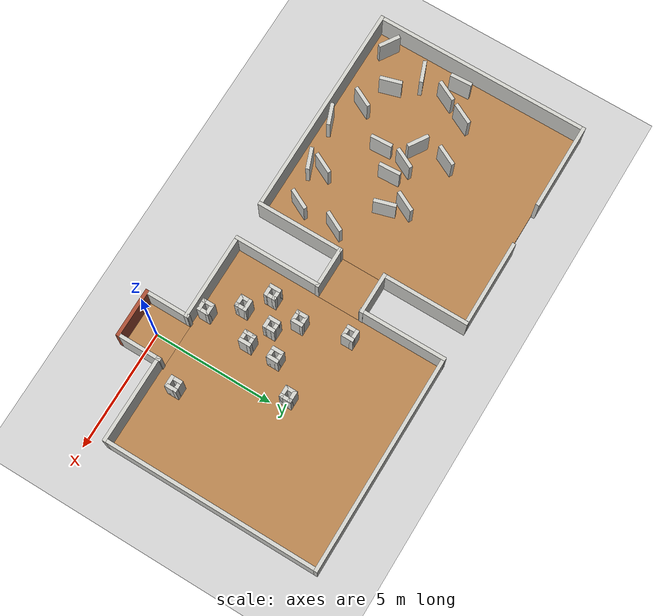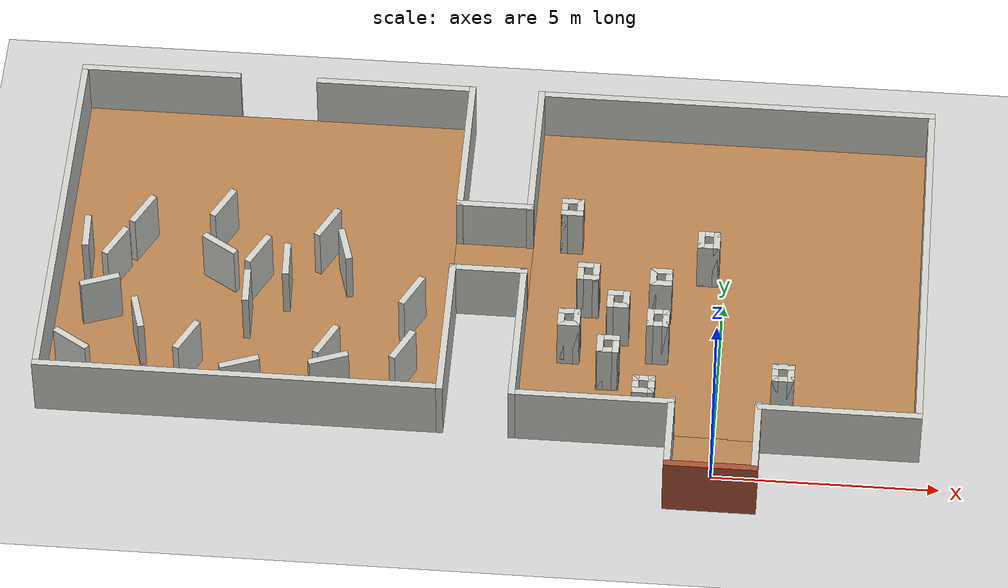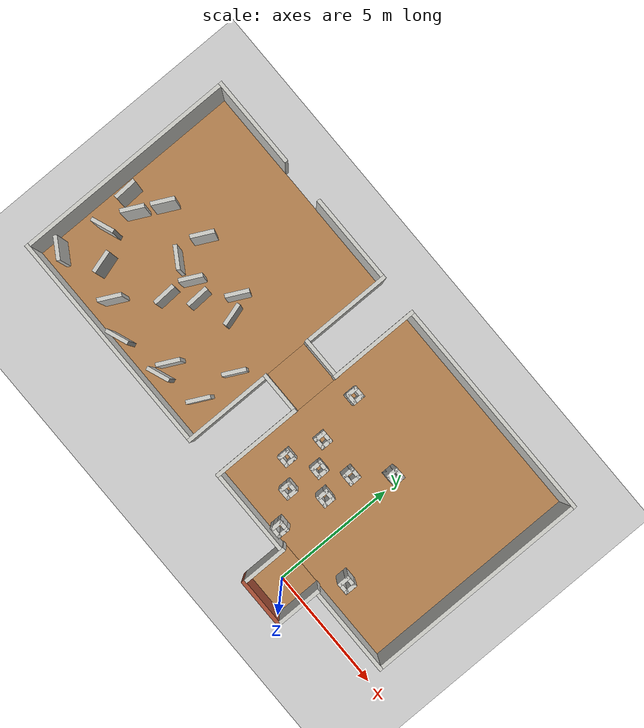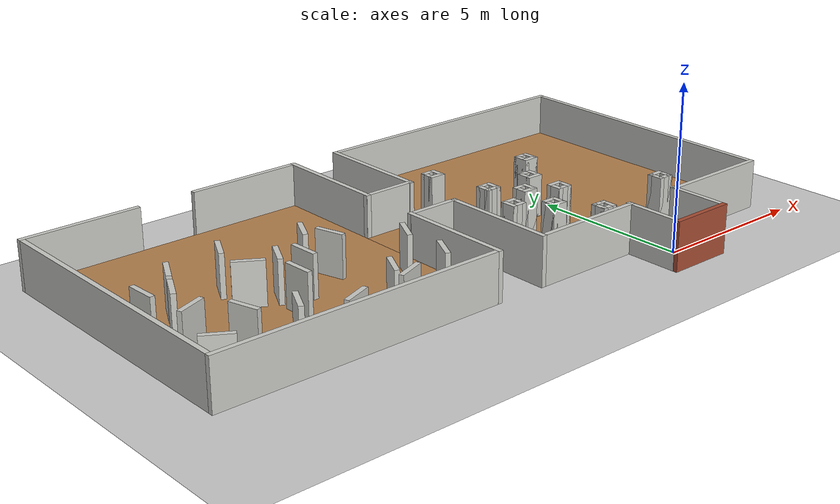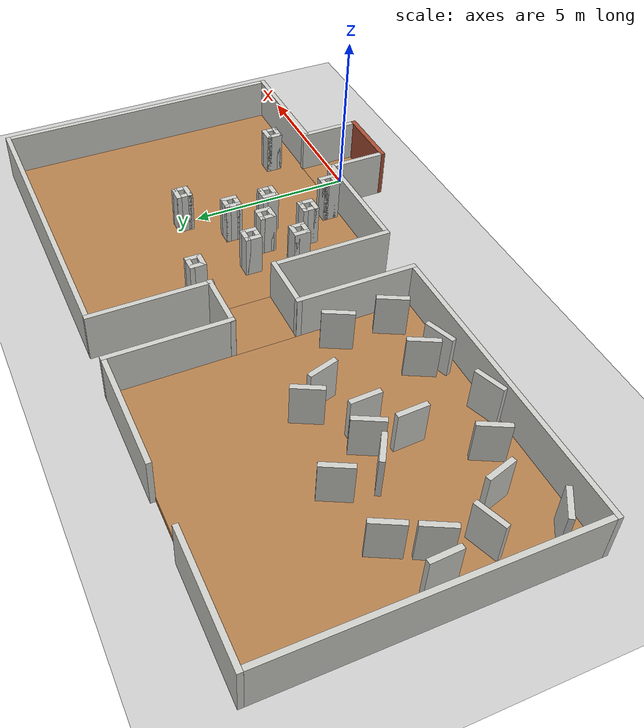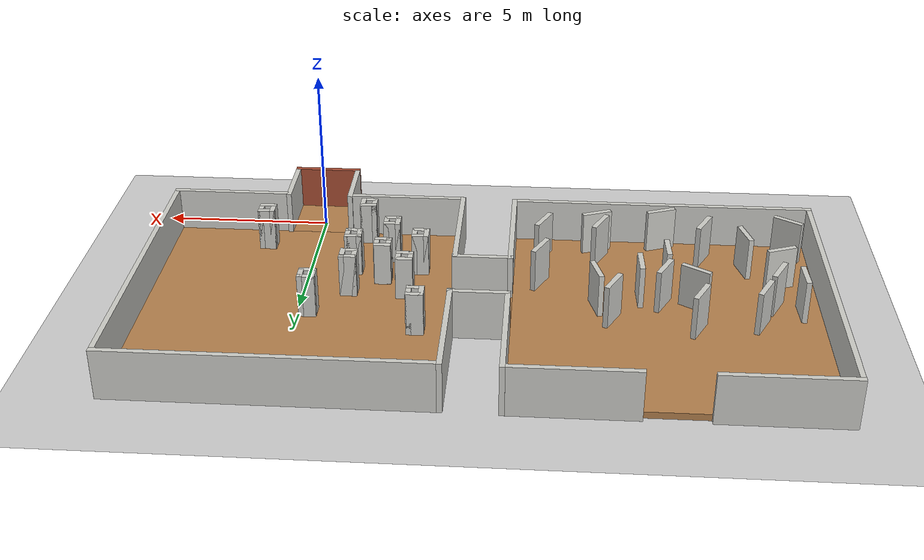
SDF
<sdf version="1.6">
 <world name="default">
  <model name="ground_plane">
   <static>1</static>
   <link name="link">
    <collision name="collision">
     <geometry><plane><normal>0 0 1</normal><size>100 100</size></plane></geometry>
     <surface><friction><ode><mu>100</mu><mu2>50</mu2></ode></friction></surface>
    </collision>
    <visual name="visual">
     <cast_shadows>0</cast_shadows>
     <geometry><plane><normal>0 0 1</normal><size>100 100</size></plane></geometry>
     <material>
      <script><uri>file://media/materials/scripts/gazebo.material</uri><name>Gazebo/Grey</name></script>
     </material>
    </visual>
   </link>
  </model>
  <model name="nerve_end">
   <pose>0 0 0 0 -0 3.14159</pose>
   <link name="Wall_0">
    <collision name="Wall_0_Collision">
     <geometry><box><size>1.76 1.75 0.2</size></box></geometry>
     <pose>0 0 0.1 0 -0 0</pose>
    </collision>
    <visual name="Wall_0_Visual">
     <pose>0 0 0.1 0 -0 0</pose>
     <geometry><box><size>1.76 1.75 0.2</size></box></geometry>
     <material>
      <script><uri>file://media/materials/scripts/gazebo.material</uri><name>Gazebo/Wood</name></script>
      <ambient>1 0.764706 0.305882 1</ambient>
     </material>
    </visual>
    <pose>-0.009 -0.064 0 0 -0 0</pose>
   </link>
   <link name="Wall_2">
    <collision name="Wall_2_Collision">
     <geometry><box><size>1.8 0.15 1.5</size></box></geometry>
     <pose>0 0 0.75 0 -0 0</pose>
    </collision>
    <visual name="Wall_2_Visual">
     <pose>0 0 0.75 0 -0 0</pose>
     <geometry><box><size>1.8 0.15 1.5</size></box></geometry>
     <material>
      <script><uri>file://media/materials/scripts/gazebo.material</uri><name>Gazebo/CeilingTiled</name></script>
      <ambient>1 0.764706 0.305882 1</ambient>
     </material>
    </visual>
    <pose>-0.95 -0.065 0 0 0 -1.5708</pose>
   </link>
   <link name="Wall_4">
    <collision name="Wall_4_Collision">
     <geometry><box><size>1.8 0.15 1.5</size></box></geometry>
     <pose>0 0 0.75 0 -0 0</pose>
    </collision>
    <visual name="Wall_4_Visual">
     <pose>0 0 0.75 0 -0 0</pose>
     <geometry><box><size>1.8 0.15 1.5</size></box></geometry>
     <material>
      <script><uri>file://media/materials/scripts/gazebo.material</uri><name>Gazebo/CeilingTiled</name></script>
      <ambient>1 0.764706 0.305882 1</ambient>
     </material>
    </visual>
    <pose>0.95 -0.065 0 0 0 -1.5708</pose>
   </link>
   <link name="Wall_6">
    <collision name="Wall_6_Collision">
     <geometry><box><size>2.05 0.15 1.5</size></box></geometry>
     <pose>0 0 0.75 0 -0 0</pose>
    </collision>
    <visual name="Wall_6_Visual">
     <pose>0 0 0.75 0 -0 0</pose>
     <geometry><box><size>2.05 0.15 1.5</size></box></geometry>
     <material>
      <script><uri>file://media/materials/scripts/gazebo.material</uri><name>Gazebo/Bricks</name></script>
      <ambient>0.996078 0.47451 0.0196078 1</ambient>
     </material>
    </visual>
    <pose>0 0.89 0 0 -0 0</pose>
   </link>
   <static>1</static>
  </model>
  <model name="nerve_room_5x5ARENA_right">
   <pose>0.001326 5.29809 0 0 -0 0</pose>
   <link name="Wall_11">
    <collision name="Wall_11_Collision">
     <geometry><box><size>8.75 0.15 1.5</size></box></geometry>
     <pose>0 0 0.75 0 -0 0</pose>
    </collision>
    <visual name="Wall_11_Visual">
     <pose>0 0 0.75 0 -0 0</pose>
     <geometry><box><size>8.75 0.15 1.5</size></box></geometry>
     <material>
      <script><uri>file://media/materials/scripts/gazebo.material</uri><name>Gazebo/CeilingTiled</name></script>
      <ambient>1 0.764706 0.305882 1</ambient>
     </material>
    </visual>
    <pose>4.44912 -0.000431 0 0 0 -1.5708</pose>
   </link>
   <link name="Wall_13">
    <collision name="Wall_13_Collision">
     <geometry><box><size>3.65 0.15 1.5</size></box></geometry>
     <pose>0 0 0.75 0 -0 0</pose>
    </collision>
    <visual name="Wall_13_Visual">
     <pose>0 0 0.75 0 -0 0</pose>
     <geometry><box><size>3.65 0.15 1.5</size></box></geometry>
     <material>
      <script><uri>file://media/materials/scripts/gazebo.material</uri><name>Gazebo/CeilingTiled</name></script>
      <ambient>1 0.764706 0.305882 1</ambient>
     </material>
    </visual>
    <pose>-4.44961 2.70076 0 0 0 -1.5708</pose>
   </link>
   <link name="Wall_15">
    <collision name="Wall_15_Collision">
     <geometry><box><size>3.65 0.15 1.5</size></box></geometry>
     <pose>0 0 0.75 0 -0 0</pose>
    </collision>
    <visual name="Wall_15_Visual">
     <pose>0 0 0.75 0 -0 0</pose>
     <geometry><box><size>3.65 0.15 1.5</size></box></geometry>
     <material>
      <script><uri>file://media/materials/scripts/gazebo.material</uri><name>Gazebo/CeilingTiled</name></script>
      <ambient>1 0.764706 0.305882 1</ambient>
     </material>
    </visual>
    <pose>2.69961 -4.45076 0 0 -0 0</pose>
   </link>
   <link name="Wall_17">
    <collision name="Wall_17_Collision">
     <geometry><box><size>8.90028 0.15 1.5</size></box></geometry>
     <pose>0 0 0.75 0 -0 0</pose>
    </collision>
    <visual name="Wall_17_Visual">
     <pose>0 0 0.75 0 -0 0</pose>
     <geometry><box><size>8.90028 0.15 1.5</size></box></geometry>
     <material>
      <script><uri>file://media/materials/scripts/gazebo.material</uri><name>Gazebo/CeilingTiled</name></script>
      <ambient>1 0.764706 0.305882 1</ambient>
     </material>
    </visual>
    <pose>0.074346 4.45022 0 0 0 -6.5e-05</pose>
   </link>
   <link name="Wall_21">
    <collision name="Wall_21_Collision">
     <geometry><box><size>3.5 0.15 1.5</size></box></geometry>
     <pose>0 0 0.75 0 -0 0</pose>
    </collision>
    <visual name="Wall_21_Visual">
     <pose>0 0 0.75 0 -0 0</pose>
     <geometry><box><size>3.5 0.15 1.5</size></box></geometry>
     <material>
      <script><uri>file://media/materials/scripts/gazebo.material</uri><name>Gazebo/CeilingTiled</name></script>
      <ambient>1 0.764706 0.305882 1</ambient>
     </material>
    </visual>
    <pose>-2.62383 -4.4498 0 0 -0 0</pose>
   </link>
   <link name="Wall_25">
    <collision name="Wall_25_Collision">
     <geometry><box><size>3.65 0.15 1.5</size></box></geometry>
     <pose>0 0 0.75 0 -0 0</pose>
    </collision>
    <visual name="Wall_25_Visual">
     <pose>0 0 0.75 0 -0 0</pose>
     <geometry><box><size>3.65 0.15 1.5</size></box></geometry>
     <material>
      <script><uri>file://media/materials/scripts/gazebo.material</uri><name>Gazebo/CeilingTiled</name></script>
      <ambient>1 0.764706 0.305882 1</ambient>
     </material>
    </visual>
    <pose>-4.44941 -2.70044 0 0 0 -1.5708</pose>
   </link>
   <link name="Wall_6">
    <collision name="Wall_6_Collision">
     <geometry><box><size>8.76 8.75 0.2</size></box></geometry>
     <pose>0 0 0.1 0 -0 0</pose>
    </collision>
    <visual name="Wall_6_Visual">
     <pose>0 0 0.1 0 -0 0</pose>
     <geometry><box><size>8.76 8.75 0.2</size></box></geometry>
     <material>
      <script><uri>file://media/materials/scripts/gazebo.material</uri><name>Gazebo/Wood</name></script>
      <ambient>1 0.764706 0.305882 1</ambient>
     </material>
    </visual>
    <pose>0.000485 -0.004173 0 0 -0 1.5708</pose>
   </link>
   <static>1</static>
  </model>
  <model name="nerve_straight">
   <pose>-5.23966 5.3216 0 0 0 -1.5708</pose>
   <link name="Wall_0">
    <collision name="Wall_0_Collision">
     <geometry><box><size>1.76 1.75 0.2</size></box></geometry>
     <pose>0 0 0.1 0 -0 0</pose>
    </collision>
    <visual name="Wall_0_Visual">
     <pose>0 0 0.1 0 -0 0</pose>
     <geometry><box><size>1.76 1.75 0.2</size></box></geometry>
     <material>
      <script><uri>file://media/materials/scripts/gazebo.material</uri><name>Gazebo/Wood</name></script>
      <ambient>1 0.764706 0.305882 1</ambient>
     </material>
    </visual>
    <pose>0.005 -0.002 0 0 -0 3.14159</pose>
   </link>
   <link name="Wall_2">
    <collision name="Wall_2_Collision">
     <geometry><box><size>1.75 0.15 1.5</size></box></geometry>
     <pose>0 0 0.75 0 -0 0</pose>
    </collision>
    <visual name="Wall_2_Visual">
     <pose>0 0 0.75 0 -0 0</pose>
     <geometry><box><size>1.75 0.15 1.5</size></box></geometry>
     <material>
      <script><uri>file://media/materials/scripts/gazebo.material</uri><name>Gazebo/CeilingTiled</name></script>
      <ambient>1 0.764706 0.305882 1</ambient>
     </material>
    </visual>
    <pose>-0.955 0.002 0 0 0 -1.5708</pose>
   </link>
   <link name="Wall_4">
    <collision name="Wall_4_Collision">
     <geometry><box><size>1.75 0.15 1.5</size></box></geometry>
     <pose>0 0 0.75 0 -0 0</pose>
    </collision>
    <visual name="Wall_4_Visual">
     <pose>0 0 0.75 0 -0 0</pose>
     <geometry><box><size>1.75 0.15 1.5</size></box></geometry>
     <material>
      <script><uri>file://media/materials/scripts/gazebo.material</uri><name>Gazebo/CeilingTiled</name></script>
      <ambient>1 0.764706 0.305882 1</ambient>
     </material>
    </visual>
    <pose>0.955 0.002 0 0 0 -1.5708</pose>
   </link>
   <static>1</static>
  </model>
  <model name="nerve_room_5x5ARENA_right_0">
   <pose>-10.4849 5.32445 0 0 0 -3.14159</pose>
   <link name="Wall_11">
    <collision name="Wall_11_Collision">
     <geometry><box><size>8.75 0.15 1.5</size></box></geometry>
     <pose>0 0 0.75 0 -0 0</pose>
    </collision>
    <visual name="Wall_11_Visual">
     <pose>0 0 0.75 0 -0 0</pose>
     <geometry><box><size>8.75 0.15 1.5</size></box></geometry>
     <material>
      <script><uri>file://media/materials/scripts/gazebo.material</uri><name>Gazebo/CeilingTiled</name></script>
      <ambient>1 0.764706 0.305882 1</ambient>
     </material>
    </visual>
    <pose>4.44912 -0.000431 0 0 0 -1.5708</pose>
   </link>
   <link name="Wall_13">
    <collision name="Wall_13_Collision">
     <geometry><box><size>3.65 0.15 1.5</size></box></geometry>
     <pose>0 0 0.75 0 -0 0</pose>
    </collision>
    <visual name="Wall_13_Visual">
     <pose>0 0 0.75 0 -0 0</pose>
     <geometry><box><size>3.65 0.15 1.5</size></box></geometry>
     <material>
      <script><uri>file://media/materials/scripts/gazebo.material</uri><name>Gazebo/CeilingTiled</name></script>
      <ambient>1 0.764706 0.305882 1</ambient>
     </material>
    </visual>
    <pose>-4.44961 2.70076 0 0 0 -1.5708</pose>
   </link>
   <link name="Wall_15">
    <collision name="Wall_15_Collision">
     <geometry><box><size>3.65 0.15 1.5</size></box></geometry>
     <pose>0 0 0.75 0 -0 0</pose>
    </collision>
    <visual name="Wall_15_Visual">
     <pose>0 0 0.75 0 -0 0</pose>
     <geometry><box><size>3.65 0.15 1.5</size></box></geometry>
     <material>
      <script><uri>file://media/materials/scripts/gazebo.material</uri><name>Gazebo/CeilingTiled</name></script>
      <ambient>1 0.764706 0.305882 1</ambient>
     </material>
    </visual>
    <pose>2.69961 -4.45076 0 0 -0 0</pose>
   </link>
   <link name="Wall_17">
    <collision name="Wall_17_Collision">
     <geometry><box><size>8.90028 0.15 1.5</size></box></geometry>
     <pose>0 0 0.75 0 -0 0</pose>
    </collision>
    <visual name="Wall_17_Visual">
     <pose>0 0 0.75 0 -0 0</pose>
     <geometry><box><size>8.90028 0.15 1.5</size></box></geometry>
     <material>
      <script><uri>file://media/materials/scripts/gazebo.material</uri><name>Gazebo/CeilingTiled</name></script>
      <ambient>1 0.764706 0.305882 1</ambient>
     </material>
    </visual>
    <pose>0.074346 4.45022 0 0 0 -6.5e-05</pose>
   </link>
   <link name="Wall_21">
    <collision name="Wall_21_Collision">
     <geometry><box><size>3.5 0.15 1.5</size></box></geometry>
     <pose>0 0 0.75 0 -0 0</pose>
    </collision>
    <visual name="Wall_21_Visual">
     <pose>0 0 0.75 0 -0 0</pose>
     <geometry><box><size>3.5 0.15 1.5</size></box></geometry>
     <material>
      <script><uri>file://media/materials/scripts/gazebo.material</uri><name>Gazebo/CeilingTiled</name></script>
      <ambient>1 0.764706 0.305882 1</ambient>
     </material>
    </visual>
    <pose>-2.62383 -4.4498 0 0 -0 0</pose>
   </link>
   <link name="Wall_25">
    <collision name="Wall_25_Collision">
     <geometry><box><size>3.65 0.15 1.5</size></box></geometry>
     <pose>0 0 0.75 0 -0 0</pose>
    </collision>
    <visual name="Wall_25_Visual">
     <pose>0 0 0.75 0 -0 0</pose>
     <geometry><box><size>3.65 0.15 1.5</size></box></geometry>
     <material>
      <script><uri>file://media/materials/scripts/gazebo.material</uri><name>Gazebo/CeilingTiled</name></script>
      <ambient>1 0.764706 0.305882 1</ambient>
     </material>
    </visual>
    <pose>-4.44941 -2.70044 0 0 0 -1.5708</pose>
   </link>
   <link name="Wall_6">
    <collision name="Wall_6_Collision">
     <geometry><box><size>8.76 8.75 0.2</size></box></geometry>
     <pose>0 0 0.1 0 -0 0</pose>
    </collision>
    <visual name="Wall_6_Visual">
     <pose>0 0 0.1 0 -0 0</pose>
     <geometry><box><size>8.76 8.75 0.2</size></box></geometry>
     <material>
      <script><uri>file://media/materials/scripts/gazebo.material</uri><name>Gazebo/Wood</name></script>
      <ambient>1 0.764706 0.305882 1</ambient>
     </material>
    </visual>
    <pose>0.000485 -0.004173 0 0 -0 1.5708</pose>
   </link>
   <static>1</static>
  </model>
  <model name="nerve_obs_squarepillar_large_clone">
   <pose>-0.387514 5.59684 0.2 0 -0 0</pose>
   <link name="Wall_31">
    <collision name="Wall_31_Collision">
     <geometry><box><size>0.5 0.15 1.3</size></box></geometry>
     <pose>0 0 0.65 0 -0 0</pose>
    </collision>
    <visual name="Wall_31_Visual">
     <pose>0 0 0.65 0 -0 0</pose>
     <geometry><box><size>0.5 0.15 1.3</size></box></geometry>
     <material>
      <script><uri>file://media/materials/scripts/gazebo.material</uri><name>Gazebo/CeilingTiled</name></script>
      <ambient>1 0.764706 0.305882 1</ambient>
     </material>
    </visual>
    <pose>-0.175 0 0 0 0 -1.5708</pose>
   </link>
   <link name="Wall_32">
    <collision name="Wall_32_Collision">
     <geometry><box><size>0.5 0.15 1.3</size></box></geometry>
     <pose>0 0 0.65 0 -0 0</pose>
    </collision>
    <visual name="Wall_32_Visual">
     <pose>0 0 0.65 0 -0 0</pose>
     <geometry><box><size>0.5 0.15 1.3</size></box></geometry>
     <material>
      <script><uri>file://media/materials/scripts/gazebo.material</uri><name>Gazebo/CeilingTiled</name></script>
      <ambient>1 0.764706 0.305882 1</ambient>
     </material>
    </visual>
    <pose>0 -0.175 0 0 -0 0</pose>
   </link>
   <link name="Wall_33">
    <collision name="Wall_33_Collision">
     <geometry><box><size>0.5 0.15 1.3</size></box></geometry>
     <pose>0 0 0.65 0 -0 0</pose>
    </collision>
    <visual name="Wall_33_Visual">
     <pose>0 0 0.65 0 -0 0</pose>
     <geometry><box><size>0.5 0.15 1.3</size></box></geometry>
     <material>
      <script><uri>file://media/materials/scripts/gazebo.material</uri><name>Gazebo/CeilingTiled</name></script>
      <ambient>1 0.764706 0.305882 1</ambient>
     </material>
    </visual>
    <pose>0.175 0 0 0 -0 1.5708</pose>
   </link>
   <link name="Wall_34">
    <collision name="Wall_34_Collision">
     <geometry><box><size>0.5 0.15 1.3</size></box></geometry>
     <pose>0 0 0.65 0 -0 0</pose>
    </collision>
    <visual name="Wall_34_Visual">
     <pose>0 0 0.65 0 -0 0</pose>
     <geometry><box><size>0.5 0.15 1.3</size></box></geometry>
     <material>
      <script><uri>file://media/materials/scripts/gazebo.material</uri><name>Gazebo/CeilingTiled</name></script>
      <ambient>1 0.764706 0.305882 1</ambient>
     </material>
    </visual>
    <pose>0 0.175 0 0 -0 3.14159</pose>
   </link>
   <static>1</static>
  </model>
  <model name="nerve_obs_squarepillar_large_clone_0">
   <pose>-1.38808 4.41977 0.2 0 -0 0</pose>
   <link name="Wall_31">
    <collision name="Wall_31_Collision">
     <geometry><box><size>0.5 0.15 1.3</size></box></geometry>
     <pose>0 0 0.65 0 -0 0</pose>
    </collision>
    <visual name="Wall_31_Visual">
     <pose>0 0 0.65 0 -0 0</pose>
     <geometry><box><size>0.5 0.15 1.3</size></box></geometry>
     <material>
      <script><uri>file://media/materials/scripts/gazebo.material</uri><name>Gazebo/CeilingTiled</name></script>
      <ambient>1 0.764706 0.305882 1</ambient>
     </material>
    </visual>
    <pose>-0.175 0 0 0 0 -1.5708</pose>
   </link>
   <link name="Wall_32">
    <collision name="Wall_32_Collision">
     <geometry><box><size>0.5 0.15 1.3</size></box></geometry>
     <pose>0 0 0.65 0 -0 0</pose>
    </collision>
    <visual name="Wall_32_Visual">
     <pose>0 0 0.65 0 -0 0</pose>
     <geometry><box><size>0.5 0.15 1.3</size></box></geometry>
     <material>
      <script><uri>file://media/materials/scripts/gazebo.material</uri><name>Gazebo/CeilingTiled</name></script>
      <ambient>1 0.764706 0.305882 1</ambient>
     </material>
    </visual>
    <pose>0 -0.175 0 0 -0 0</pose>
   </link>
   <link name="Wall_33">
    <collision name="Wall_33_Collision">
     <geometry><box><size>0.5 0.15 1.3</size></box></geometry>
     <pose>0 0 0.65 0 -0 0</pose>
    </collision>
    <visual name="Wall_33_Visual">
     <pose>0 0 0.65 0 -0 0</pose>
     <geometry><box><size>0.5 0.15 1.3</size></box></geometry>
     <material>
      <script><uri>file://media/materials/scripts/gazebo.material</uri><name>Gazebo/CeilingTiled</name></script>
      <ambient>1 0.764706 0.305882 1</ambient>
     </material>
    </visual>
    <pose>0.175 0 0 0 -0 1.5708</pose>
   </link>
   <link name="Wall_34">
    <collision name="Wall_34_Collision">
     <geometry><box><size>0.5 0.15 1.3</size></box></geometry>
     <pose>0 0 0.65 0 -0 0</pose>
    </collision>
    <visual name="Wall_34_Visual">
     <pose>0 0 0.65 0 -0 0</pose>
     <geometry><box><size>0.5 0.15 1.3</size></box></geometry>
     <material>
      <script><uri>file://media/materials/scripts/gazebo.material</uri><name>Gazebo/CeilingTiled</name></script>
      <ambient>1 0.764706 0.305882 1</ambient>
     </material>
    </visual>
    <pose>0 0.175 0 0 -0 3.14159</pose>
   </link>
   <static>1</static>
  </model>
  <model name="nerve_obs_squarepillar_large_clone_3">
   <pose>-3.00924 4.4662 0.2 0 -0 0</pose>
   <link name="Wall_31">
    <collision name="Wall_31_Collision">
     <geometry><box><size>0.5 0.15 1.3</size></box></geometry>
     <pose>0 0 0.65 0 -0 0</pose>
    </collision>
    <visual name="Wall_31_Visual">
     <pose>0 0 0.65 0 -0 0</pose>
     <geometry><box><size>0.5 0.15 1.3</size></box></geometry>
     <material>
      <script><uri>file://media/materials/scripts/gazebo.material</uri><name>Gazebo/CeilingTiled</name></script>
      <ambient>1 0.764706 0.305882 1</ambient>
     </material>
    </visual>
    <pose>-0.175 0 0 0 0 -1.5708</pose>
   </link>
   <link name="Wall_32">
    <collision name="Wall_32_Collision">
     <geometry><box><size>0.5 0.15 1.3</size></box></geometry>
     <pose>0 0 0.65 0 -0 0</pose>
    </collision>
    <visual name="Wall_32_Visual">
     <pose>0 0 0.65 0 -0 0</pose>
     <geometry><box><size>0.5 0.15 1.3</size></box></geometry>
     <material>
      <script><uri>file://media/materials/scripts/gazebo.material</uri><name>Gazebo/CeilingTiled</name></script>
      <ambient>1 0.764706 0.305882 1</ambient>
     </material>
    </visual>
    <pose>0 -0.175 0 0 -0 0</pose>
   </link>
   <link name="Wall_33">
    <collision name="Wall_33_Collision">
     <geometry><box><size>0.5 0.15 1.3</size></box></geometry>
     <pose>0 0 0.65 0 -0 0</pose>
    </collision>
    <visual name="Wall_33_Visual">
     <pose>0 0 0.65 0 -0 0</pose>
     <geometry><box><size>0.5 0.15 1.3</size></box></geometry>
     <material>
      <script><uri>file://media/materials/scripts/gazebo.material</uri><name>Gazebo/CeilingTiled</name></script>
      <ambient>1 0.764706 0.305882 1</ambient>
     </material>
    </visual>
    <pose>0.175 0 0 0 -0 1.5708</pose>
   </link>
   <link name="Wall_34">
    <collision name="Wall_34_Collision">
     <geometry><box><size>0.5 0.15 1.3</size></box></geometry>
     <pose>0 0 0.65 0 -0 0</pose>
    </collision>
    <visual name="Wall_34_Visual">
     <pose>0 0 0.65 0 -0 0</pose>
     <geometry><box><size>0.5 0.15 1.3</size></box></geometry>
     <material>
      <script><uri>file://media/materials/scripts/gazebo.material</uri><name>Gazebo/CeilingTiled</name></script>
      <ambient>1 0.764706 0.305882 1</ambient>
     </material>
    </visual>
    <pose>0 0.175 0 0 -0 3.14159</pose>
   </link>
   <static>1</static>
  </model>
  <model name="nerve_obs_squarepillar_large_clone_5">
   <pose>-2.43769 2.39077 0.2 0 -0 0</pose>
   <link name="Wall_31">
    <collision name="Wall_31_Collision">
     <geometry><box><size>0.5 0.15 1.3</size></box></geometry>
     <pose>0 0 0.65 0 -0 0</pose>
    </collision>
    <visual name="Wall_31_Visual">
     <pose>0 0 0.65 0 -0 0</pose>
     <geometry><box><size>0.5 0.15 1.3</size></box></geometry>
     <material>
      <script><uri>file://media/materials/scripts/gazebo.material</uri><name>Gazebo/CeilingTiled</name></script>
      <ambient>1 0.764706 0.305882 1</ambient>
     </material>
    </visual>
    <pose>-0.175 0 0 0 0 -1.5708</pose>
   </link>
   <link name="Wall_32">
    <collision name="Wall_32_Collision">
     <geometry><box><size>0.5 0.15 1.3</size></box></geometry>
     <pose>0 0 0.65 0 -0 0</pose>
    </collision>
    <visual name="Wall_32_Visual">
     <pose>0 0 0.65 0 -0 0</pose>
     <geometry><box><size>0.5 0.15 1.3</size></box></geometry>
     <material>
      <script><uri>file://media/materials/scripts/gazebo.material</uri><name>Gazebo/CeilingTiled</name></script>
      <ambient>1 0.764706 0.305882 1</ambient>
     </material>
    </visual>
    <pose>0 -0.175 0 0 -0 0</pose>
   </link>
   <link name="Wall_33">
    <collision name="Wall_33_Collision">
     <geometry><box><size>0.5 0.15 1.3</size></box></geometry>
     <pose>0 0 0.65 0 -0 0</pose>
    </collision>
    <visual name="Wall_33_Visual">
     <pose>0 0 0.65 0 -0 0</pose>
     <geometry><box><size>0.5 0.15 1.3</size></box></geometry>
     <material>
      <script><uri>file://media/materials/scripts/gazebo.material</uri><name>Gazebo/CeilingTiled</name></script>
      <ambient>1 0.764706 0.305882 1</ambient>
     </material>
    </visual>
    <pose>0.175 0 0 0 -0 1.5708</pose>
   </link>
   <link name="Wall_34">
    <collision name="Wall_34_Collision">
     <geometry><box><size>0.5 0.15 1.3</size></box></geometry>
     <pose>0 0 0.65 0 -0 0</pose>
    </collision>
    <visual name="Wall_34_Visual">
     <pose>0 0 0.65 0 -0 0</pose>
     <geometry><box><size>0.5 0.15 1.3</size></box></geometry>
     <material>
      <script><uri>file://media/materials/scripts/gazebo.material</uri><name>Gazebo/CeilingTiled</name></script>
      <ambient>1 0.764706 0.305882 1</ambient>
     </material>
    </visual>
    <pose>0 0.175 0 0 -0 3.14159</pose>
   </link>
   <static>1</static>
  </model>
  <model name="nerve_obs_squarepillar_large_clone_12">
   <pose>-3.34602 3.09032 0.2 0 -0 0</pose>
   <link name="Wall_31">
    <collision name="Wall_31_Collision">
     <geometry><box><size>0.5 0.15 1.3</size></box></geometry>
     <pose>0 0 0.65 0 -0 0</pose>
    </collision>
    <visual name="Wall_31_Visual">
     <pose>0 0 0.65 0 -0 0</pose>
     <geometry><box><size>0.5 0.15 1.3</size></box></geometry>
     <material>
      <script><uri>file://media/materials/scripts/gazebo.material</uri><name>Gazebo/CeilingTiled</name></script>
      <ambient>1 0.764706 0.305882 1</ambient>
     </material>
    </visual>
    <pose>-0.175 0 0 0 0 -1.5708</pose>
   </link>
   <link name="Wall_32">
    <collision name="Wall_32_Collision">
     <geometry><box><size>0.5 0.15 1.3</size></box></geometry>
     <pose>0 0 0.65 0 -0 0</pose>
    </collision>
    <visual name="Wall_32_Visual">
     <pose>0 0 0.65 0 -0 0</pose>
     <geometry><box><size>0.5 0.15 1.3</size></box></geometry>
     <material>
      <script><uri>file://media/materials/scripts/gazebo.material</uri><name>Gazebo/CeilingTiled</name></script>
      <ambient>1 0.764706 0.305882 1</ambient>
     </material>
    </visual>
    <pose>0 -0.175 0 0 -0 0</pose>
   </link>
   <link name="Wall_33">
    <collision name="Wall_33_Collision">
     <geometry><box><size>0.5 0.15 1.3</size></box></geometry>
     <pose>0 0 0.65 0 -0 0</pose>
    </collision>
    <visual name="Wall_33_Visual">
     <pose>0 0 0.65 0 -0 0</pose>
     <geometry><box><size>0.5 0.15 1.3</size></box></geometry>
     <material>
      <script><uri>file://media/materials/scripts/gazebo.material</uri><name>Gazebo/CeilingTiled</name></script>
      <ambient>1 0.764706 0.305882 1</ambient>
     </material>
    </visual>
    <pose>0.175 0 0 0 -0 1.5708</pose>
   </link>
   <link name="Wall_34">
    <collision name="Wall_34_Collision">
     <geometry><box><size>0.5 0.15 1.3</size></box></geometry>
     <pose>0 0 0.65 0 -0 0</pose>
    </collision>
    <visual name="Wall_34_Visual">
     <pose>0 0 0.65 0 -0 0</pose>
     <geometry><box><size>0.5 0.15 1.3</size></box></geometry>
     <material>
      <script><uri>file://media/materials/scripts/gazebo.material</uri><name>Gazebo/CeilingTiled</name></script>
      <ambient>1 0.764706 0.305882 1</ambient>
     </material>
    </visual>
    <pose>0 0.175 0 0 -0 3.14159</pose>
   </link>
   <static>1</static>
  </model>
  <model name="nerve_obs_squarepillar_large_clone_13">
   <pose>1.44435 1.84204 0.2 0 -0 0</pose>
   <link name="Wall_31">
    <collision name="Wall_31_Collision">
     <geometry><box><size>0.5 0.15 1.3</size></box></geometry>
     <pose>0 0 0.65 0 -0 0</pose>
    </collision>
    <visual name="Wall_31_Visual">
     <pose>0 0 0.65 0 -0 0</pose>
     <geometry><box><size>0.5 0.15 1.3</size></box></geometry>
     <material>
      <script><uri>file://media/materials/scripts/gazebo.material</uri><name>Gazebo/CeilingTiled</name></script>
      <ambient>1 0.764706 0.305882 1</ambient>
     </material>
    </visual>
    <pose>-0.175 0 0 0 0 -1.5708</pose>
   </link>
   <link name="Wall_32">
    <collision name="Wall_32_Collision">
     <geometry><box><size>0.5 0.15 1.3</size></box></geometry>
     <pose>0 0 0.65 0 -0 0</pose>
    </collision>
    <visual name="Wall_32_Visual">
     <pose>0 0 0.65 0 -0 0</pose>
     <geometry><box><size>0.5 0.15 1.3</size></box></geometry>
     <material>
      <script><uri>file://media/materials/scripts/gazebo.material</uri><name>Gazebo/CeilingTiled</name></script>
      <ambient>1 0.764706 0.305882 1</ambient>
     </material>
    </visual>
    <pose>0 -0.175 0 0 -0 0</pose>
   </link>
   <link name="Wall_33">
    <collision name="Wall_33_Collision">
     <geometry><box><size>0.5 0.15 1.3</size></box></geometry>
     <pose>0 0 0.65 0 -0 0</pose>
    </collision>
    <visual name="Wall_33_Visual">
     <pose>0 0 0.65 0 -0 0</pose>
     <geometry><box><size>0.5 0.15 1.3</size></box></geometry>
     <material>
      <script><uri>file://media/materials/scripts/gazebo.material</uri><name>Gazebo/CeilingTiled</name></script>
      <ambient>1 0.764706 0.305882 1</ambient>
     </material>
    </visual>
    <pose>0.175 0 0 0 -0 1.5708</pose>
   </link>
   <link name="Wall_34">
    <collision name="Wall_34_Collision">
     <geometry><box><size>0.5 0.15 1.3</size></box></geometry>
     <pose>0 0 0.65 0 -0 0</pose>
    </collision>
    <visual name="Wall_34_Visual">
     <pose>0 0 0.65 0 -0 0</pose>
     <geometry><box><size>0.5 0.15 1.3</size></box></geometry>
     <material>
      <script><uri>file://media/materials/scripts/gazebo.material</uri><name>Gazebo/CeilingTiled</name></script>
      <ambient>1 0.764706 0.305882 1</ambient>
     </material>
    </visual>
    <pose>0 0.175 0 0 -0 3.14159</pose>
   </link>
   <static>1</static>
  </model>
  <model name="nerve_obs_squarepillar_large_clone_14">
   <pose>-1.38272 3.22303 0.2 0 -0 0</pose>
   <link name="Wall_31">
    <collision name="Wall_31_Collision">
     <geometry><box><size>0.5 0.15 1.3</size></box></geometry>
     <pose>0 0 0.65 0 -0 0</pose>
    </collision>
    <visual name="Wall_31_Visual">
     <pose>0 0 0.65 0 -0 0</pose>
     <geometry><box><size>0.5 0.15 1.3</size></box></geometry>
     <material>
      <script><uri>file://media/materials/scripts/gazebo.material</uri><name>Gazebo/CeilingTiled</name></script>
      <ambient>1 0.764706 0.305882 1</ambient>
     </material>
    </visual>
    <pose>-0.175 0 0 0 0 -1.5708</pose>
   </link>
   <link name="Wall_32">
    <collision name="Wall_32_Collision">
     <geometry><box><size>0.5 0.15 1.3</size></box></geometry>
     <pose>0 0 0.65 0 -0 0</pose>
    </collision>
    <visual name="Wall_32_Visual">
     <pose>0 0 0.65 0 -0 0</pose>
     <geometry><box><size>0.5 0.15 1.3</size></box></geometry>
     <material>
      <script><uri>file://media/materials/scripts/gazebo.material</uri><name>Gazebo/CeilingTiled</name></script>
      <ambient>1 0.764706 0.305882 1</ambient>
     </material>
    </visual>
    <pose>0 -0.175 0 0 -0 0</pose>
   </link>
   <link name="Wall_33">
    <collision name="Wall_33_Collision">
     <geometry><box><size>0.5 0.15 1.3</size></box></geometry>
     <pose>0 0 0.65 0 -0 0</pose>
    </collision>
    <visual name="Wall_33_Visual">
     <pose>0 0 0.65 0 -0 0</pose>
     <geometry><box><size>0.5 0.15 1.3</size></box></geometry>
     <material>
      <script><uri>file://media/materials/scripts/gazebo.material</uri><name>Gazebo/CeilingTiled</name></script>
      <ambient>1 0.764706 0.305882 1</ambient>
     </material>
    </visual>
    <pose>0.175 0 0 0 -0 1.5708</pose>
   </link>
   <link name="Wall_34">
    <collision name="Wall_34_Collision">
     <geometry><box><size>0.5 0.15 1.3</size></box></geometry>
     <pose>0 0 0.65 0 -0 0</pose>
    </collision>
    <visual name="Wall_34_Visual">
     <pose>0 0 0.65 0 -0 0</pose>
     <geometry><box><size>0.5 0.15 1.3</size></box></geometry>
     <material>
      <script><uri>file://media/materials/scripts/gazebo.material</uri><name>Gazebo/CeilingTiled</name></script>
      <ambient>1 0.764706 0.305882 1</ambient>
     </material>
    </visual>
    <pose>0 0.175 0 0 -0 3.14159</pose>
   </link>
   <static>1</static>
  </model>
  <model name="nerve_obs_squarepillar_large_clone_15">
   <pose>-2.29555 3.70291 0.2 0 -0 0</pose>
   <link name="Wall_31">
    <collision name="Wall_31_Collision">
     <geometry><box><size>0.5 0.15 1.3</size></box></geometry>
     <pose>0 0 0.65 0 -0 0</pose>
    </collision>
    <visual name="Wall_31_Visual">
     <pose>0 0 0.65 0 -0 0</pose>
     <geometry><box><size>0.5 0.15 1.3</size></box></geometry>
     <material>
      <script><uri>file://media/materials/scripts/gazebo.material</uri><name>Gazebo/CeilingTiled</name></script>
      <ambient>1 0.764706 0.305882 1</ambient>
     </material>
    </visual>
    <pose>-0.175 0 0 0 0 -1.5708</pose>
   </link>
   <link name="Wall_32">
    <collision name="Wall_32_Collision">
     <geometry><box><size>0.5 0.15 1.3</size></box></geometry>
     <pose>0 0 0.65 0 -0 0</pose>
    </collision>
    <visual name="Wall_32_Visual">
     <pose>0 0 0.65 0 -0 0</pose>
     <geometry><box><size>0.5 0.15 1.3</size></box></geometry>
     <material>
      <script><uri>file://media/materials/scripts/gazebo.material</uri><name>Gazebo/CeilingTiled</name></script>
      <ambient>1 0.764706 0.305882 1</ambient>
     </material>
    </visual>
    <pose>0 -0.175 0 0 -0 0</pose>
   </link>
   <link name="Wall_33">
    <collision name="Wall_33_Collision">
     <geometry><box><size>0.5 0.15 1.3</size></box></geometry>
     <pose>0 0 0.65 0 -0 0</pose>
    </collision>
    <visual name="Wall_33_Visual">
     <pose>0 0 0.65 0 -0 0</pose>
     <geometry><box><size>0.5 0.15 1.3</size></box></geometry>
     <material>
      <script><uri>file://media/materials/scripts/gazebo.material</uri><name>Gazebo/CeilingTiled</name></script>
      <ambient>1 0.764706 0.305882 1</ambient>
     </material>
    </visual>
    <pose>0.175 0 0 0 -0 1.5708</pose>
   </link>
   <link name="Wall_34">
    <collision name="Wall_34_Collision">
     <geometry><box><size>0.5 0.15 1.3</size></box></geometry>
     <pose>0 0 0.65 0 -0 0</pose>
    </collision>
    <visual name="Wall_34_Visual">
     <pose>0 0 0.65 0 -0 0</pose>
     <geometry><box><size>0.5 0.15 1.3</size></box></geometry>
     <material>
      <script><uri>file://media/materials/scripts/gazebo.material</uri><name>Gazebo/CeilingTiled</name></script>
      <ambient>1 0.764706 0.305882 1</ambient>
     </material>
    </visual>
    <pose>0 0.175 0 0 -0 3.14159</pose>
   </link>
   <static>1</static>
  </model>
  <model name="nerve_obs_squarepillar_large_clone_11_clone">
   <pose>-3.49544 6.34448 0.2 0 -0 0</pose>
   <link name="Wall_31">
    <collision name="Wall_31_Collision">
     <geometry><box><size>0.5 0.15 1.3</size></box></geometry>
     <pose>0 0 0.65 0 -0 0</pose>
    </collision>
    <visual name="Wall_31_Visual">
     <pose>0 0 0.65 0 -0 0</pose>
     <geometry><box><size>0.5 0.15 1.3</size></box></geometry>
     <material>
      <script><uri>file://media/materials/scripts/gazebo.material</uri><name>Gazebo/CeilingTiled</name></script>
      <ambient>1 0.764706 0.305882 1</ambient>
     </material>
    </visual>
    <pose>-0.175 0 0 0 0 -1.5708</pose>
   </link>
   <link name="Wall_32">
    <collision name="Wall_32_Collision">
     <geometry><box><size>0.5 0.15 1.3</size></box></geometry>
     <pose>0 0 0.65 0 -0 0</pose>
    </collision>
    <visual name="Wall_32_Visual">
     <pose>0 0 0.65 0 -0 0</pose>
     <geometry><box><size>0.5 0.15 1.3</size></box></geometry>
     <material>
      <script><uri>file://media/materials/scripts/gazebo.material</uri><name>Gazebo/CeilingTiled</name></script>
      <ambient>1 0.764706 0.305882 1</ambient>
     </material>
    </visual>
    <pose>0 -0.175 0 0 -0 0</pose>
   </link>
   <link name="Wall_33">
    <collision name="Wall_33_Collision">
     <geometry><box><size>0.5 0.15 1.3</size></box></geometry>
     <pose>0 0 0.65 0 -0 0</pose>
    </collision>
    <visual name="Wall_33_Visual">
     <pose>0 0 0.65 0 -0 0</pose>
     <geometry><box><size>0.5 0.15 1.3</size></box></geometry>
     <material>
      <script><uri>file://media/materials/scripts/gazebo.material</uri><name>Gazebo/CeilingTiled</name></script>
      <ambient>1 0.764706 0.305882 1</ambient>
     </material>
    </visual>
    <pose>0.175 0 0 0 -0 1.5708</pose>
   </link>
   <link name="Wall_34">
    <collision name="Wall_34_Collision">
     <geometry><box><size>0.5 0.15 1.3</size></box></geometry>
     <pose>0 0 0.65 0 -0 0</pose>
    </collision>
    <visual name="Wall_34_Visual">
     <pose>0 0 0.65 0 -0 0</pose>
     <geometry><box><size>0.5 0.15 1.3</size></box></geometry>
     <material>
      <script><uri>file://media/materials/scripts/gazebo.material</uri><name>Gazebo/CeilingTiled</name></script>
      <ambient>1 0.764706 0.305882 1</ambient>
     </material>
    </visual>
    <pose>0 0.175 0 0 -0 3.14159</pose>
   </link>
   <static>1</static>
  </model>
  <model name="nerve_obs_squarepillar_large_clone_11_clone_2">
   <pose>-1.59071 1.28562 0.2 0 -0 0</pose>
   <link name="Wall_31">
    <collision name="Wall_31_Collision">
     <geometry><box><size>0.5 0.15 1.3</size></box></geometry>
     <pose>0 0 0.65 0 -0 0</pose>
    </collision>
    <visual name="Wall_31_Visual">
     <pose>0 0 0.65 0 -0 0</pose>
     <geometry><box><size>0.5 0.15 1.3</size></box></geometry>
     <material>
      <script><uri>file://media/materials/scripts/gazebo.material</uri><name>Gazebo/CeilingTiled</name></script>
      <ambient>1 0.764706 0.305882 1</ambient>
     </material>
    </visual>
    <pose>-0.175 0 0 0 0 -1.5708</pose>
   </link>
   <link name="Wall_32">
    <collision name="Wall_32_Collision">
     <geometry><box><size>0.5 0.15 1.3</size></box></geometry>
     <pose>0 0 0.65 0 -0 0</pose>
    </collision>
    <visual name="Wall_32_Visual">
     <pose>0 0 0.65 0 -0 0</pose>
     <geometry><box><size>0.5 0.15 1.3</size></box></geometry>
     <material>
      <script><uri>file://media/materials/scripts/gazebo.material</uri><name>Gazebo/CeilingTiled</name></script>
      <ambient>1 0.764706 0.305882 1</ambient>
     </material>
    </visual>
    <pose>0 -0.175 0 0 -0 0</pose>
   </link>
   <link name="Wall_33">
    <collision name="Wall_33_Collision">
     <geometry><box><size>0.5 0.15 1.3</size></box></geometry>
     <pose>0 0 0.65 0 -0 0</pose>
    </collision>
    <visual name="Wall_33_Visual">
     <pose>0 0 0.65 0 -0 0</pose>
     <geometry><box><size>0.5 0.15 1.3</size></box></geometry>
     <material>
      <script><uri>file://media/materials/scripts/gazebo.material</uri><name>Gazebo/CeilingTiled</name></script>
      <ambient>1 0.764706 0.305882 1</ambient>
     </material>
    </visual>
    <pose>0.175 0 0 0 -0 1.5708</pose>
   </link>
   <link name="Wall_34">
    <collision name="Wall_34_Collision">
     <geometry><box><size>0.5 0.15 1.3</size></box></geometry>
     <pose>0 0 0.65 0 -0 0</pose>
    </collision>
    <visual name="Wall_34_Visual">
     <pose>0 0 0.65 0 -0 0</pose>
     <geometry><box><size>0.5 0.15 1.3</size></box></geometry>
     <material>
      <script><uri>file://media/materials/scripts/gazebo.material</uri><name>Gazebo/CeilingTiled</name></script>
      <ambient>1 0.764706 0.305882 1</ambient>
     </material>
    </visual>
    <pose>0 0.175 0 0 -0 3.14159</pose>
   </link>
   <static>1</static>
  </model>
  <model name="nerve_obs_wall_short_clone">
   <pose>-8.48285 4.84821 0.2 0 0 -1.2889</pose>
   <link name="Wall_21">
    <collision name="Wall_21_Collision">
     <geometry><box><size>0.9 0.15 1.3</size></box></geometry>
     <pose>0 0 0.65 0 -0 0</pose>
    </collision>
    <visual name="Wall_21_Visual">
     <pose>0 0 0.65 0 -0 0</pose>
     <geometry><box><size>0.9 0.15 1.3</size></box></geometry>
     <material>
      <script><uri>file://media/materials/scripts/gazebo.material</uri><name>Gazebo/CeilingTiled</name></script>
      <ambient>1 0.764706 0.305882 1</ambient>
     </material>
    </visual>
   </link>
   <static>1</static>
  </model>
  <model name="nerve_obs_wall_short_clone_2">
   <pose>-12.8686 2.50939 0.2 0 0 -1.2889</pose>
   <link name="Wall_21">
    <collision name="Wall_21_Collision">
     <geometry><box><size>0.9 0.15 1.3</size></box></geometry>
     <pose>0 0 0.65 0 -0 0</pose>
    </collision>
    <visual name="Wall_21_Visual">
     <pose>0 0 0.65 0 -0 0</pose>
     <geometry><box><size>0.9 0.15 1.3</size></box></geometry>
     <material>
      <script><uri>file://media/materials/scripts/gazebo.material</uri><name>Gazebo/CeilingTiled</name></script>
      <ambient>1 0.764706 0.305882 1</ambient>
     </material>
    </visual>
   </link>
   <static>1</static>
  </model>
  <model name="nerve_obs_wall_short_clone_3">
   <pose>-8.93491 5.46924 0.2 0 0 -2.03741</pose>
   <link name="Wall_21">
    <collision name="Wall_21_Collision">
     <geometry><box><size>0.9 0.15 1.3</size></box></geometry>
     <pose>0 0 0.65 0 -0 0</pose>
    </collision>
    <visual name="Wall_21_Visual">
     <pose>0 0 0.65 0 -0 0</pose>
     <geometry><box><size>0.9 0.15 1.3</size></box></geometry>
     <material>
      <script><uri>file://media/materials/scripts/gazebo.material</uri><name>Gazebo/CeilingTiled</name></script>
      <ambient>1 0.764706 0.305882 1</ambient>
     </material>
    </visual>
   </link>
   <static>1</static>
  </model>
  <model name="nerve_obs_wall_short_clone_5">
   <pose>-13.6048 4.55598 0.2 0 0 -2.03741</pose>
   <link name="Wall_21">
    <collision name="Wall_21_Collision">
     <geometry><box><size>0.9 0.15 1.3</size></box></geometry>
     <pose>0 0 0.65 0 -0 0</pose>
    </collision>
    <visual name="Wall_21_Visual">
     <pose>0 0 0.65 0 -0 0</pose>
     <geometry><box><size>0.9 0.15 1.3</size></box></geometry>
     <material>
      <script><uri>file://media/materials/scripts/gazebo.material</uri><name>Gazebo/CeilingTiled</name></script>
      <ambient>1 0.764706 0.305882 1</ambient>
     </material>
    </visual>
   </link>
   <static>1</static>
  </model>
  <model name="nerve_obs_wall_short_clone_6">
   <pose>-6.94441 2.01441 0.2 0 0 -2.03741</pose>
   <link name="Wall_21">
    <collision name="Wall_21_Collision">
     <geometry><box><size>0.9 0.15 1.3</size></box></geometry>
     <pose>0 0 0.65 0 -0 0</pose>
    </collision>
    <visual name="Wall_21_Visual">
     <pose>0 0 0.65 0 -0 0</pose>
     <geometry><box><size>0.9 0.15 1.3</size></box></geometry>
     <material>
      <script><uri>file://media/materials/scripts/gazebo.material</uri><name>Gazebo/CeilingTiled</name></script>
      <ambient>1 0.764706 0.305882 1</ambient>
     </material>
    </visual>
   </link>
   <static>1</static>
  </model>
  <model name="nerve_obs_wall_short_clone_7">
   <pose>-11.3286 5.86977 0.2 0 0 -2.03741</pose>
   <link name="Wall_21">
    <collision name="Wall_21_Collision">
     <geometry><box><size>0.9 0.15 1.3</size></box></geometry>
     <pose>0 0 0.65 0 -0 0</pose>
    </collision>
    <visual name="Wall_21_Visual">
     <pose>0 0 0.65 0 -0 0</pose>
     <geometry><box><size>0.9 0.15 1.3</size></box></geometry>
     <material>
      <script><uri>file://media/materials/scripts/gazebo.material</uri><name>Gazebo/CeilingTiled</name></script>
      <ambient>1 0.764706 0.305882 1</ambient>
     </material>
    </visual>
   </link>
   <static>1</static>
  </model>
  <model name="nerve_obs_wall_short_clone_11">
   <pose>-8.53626 1.50383 0.2 0 0 -2.78163</pose>
   <link name="Wall_21">
    <collision name="Wall_21_Collision">
     <geometry><box><size>0.9 0.15 1.3</size></box></geometry>
     <pose>0 0 0.65 0 -0 0</pose>
    </collision>
    <visual name="Wall_21_Visual">
     <pose>0 0 0.65 0 -0 0</pose>
     <geometry><box><size>0.9 0.15 1.3</size></box></geometry>
     <material>
      <script><uri>file://media/materials/scripts/gazebo.material</uri><name>Gazebo/CeilingTiled</name></script>
      <ambient>1 0.764706 0.305882 1</ambient>
     </material>
    </visual>
   </link>
   <static>1</static>
  </model>
  <model name="nerve_obs_wall_short_clone_12">
   <pose>-10.4778 1.24205 0.2 0 0 -2.78163</pose>
   <link name="Wall_21">
    <collision name="Wall_21_Collision">
     <geometry><box><size>0.9 0.15 1.3</size></box></geometry>
     <pose>0 0 0.65 0 -0 0</pose>
    </collision>
    <visual name="Wall_21_Visual">
     <pose>0 0 0.65 0 -0 0</pose>
     <geometry><box><size>0.9 0.15 1.3</size></box></geometry>
     <material>
      <script><uri>file://media/materials/scripts/gazebo.material</uri><name>Gazebo/CeilingTiled</name></script>
      <ambient>1 0.764706 0.305882 1</ambient>
     </material>
    </visual>
   </link>
   <static>1</static>
  </model>
  <model name="nerve_obs_wall_short_clone_13">
   <pose>-13.8154 3.3798 0.2 0 0 -2.78163</pose>
   <link name="Wall_21">
    <collision name="Wall_21_Collision">
     <geometry><box><size>0.9 0.15 1.3</size></box></geometry>
     <pose>0 0 0.65 0 -0 0</pose>
    </collision>
    <visual name="Wall_21_Visual">
     <pose>0 0 0.65 0 -0 0</pose>
     <geometry><box><size>0.9 0.15 1.3</size></box></geometry>
     <material>
      <script><uri>file://media/materials/scripts/gazebo.material</uri><name>Gazebo/CeilingTiled</name></script>
      <ambient>1 0.764706 0.305882 1</ambient>
     </material>
    </visual>
   </link>
   <static>1</static>
  </model>
  <model name="nerve_obs_wall_short_clone_15">
   <pose>-14.2341 1.62644 0.2 0 -0 2.5789</pose>
   <link name="Wall_21">
    <collision name="Wall_21_Collision">
     <geometry><box><size>0.9 0.15 1.3</size></box></geometry>
     <pose>0 0 0.65 0 -0 0</pose>
    </collision>
    <visual name="Wall_21_Visual">
     <pose>0 0 0.65 0 -0 0</pose>
     <geometry><box><size>0.9 0.15 1.3</size></box></geometry>
     <material>
      <script><uri>file://media/materials/scripts/gazebo.material</uri><name>Gazebo/CeilingTiled</name></script>
      <ambient>1 0.764706 0.305882 1</ambient>
     </material>
    </visual>
   </link>
   <static>1</static>
  </model>
  <model name="nerve_obs_wall_short_clone_19">
   <pose>-14.2854 4.80606 0.2 0 -0 1.61603</pose>
   <link name="Wall_21">
    <collision name="Wall_21_Collision">
     <geometry><box><size>0.9 0.15 1.3</size></box></geometry>
     <pose>0 0 0.65 0 -0 0</pose>
    </collision>
    <visual name="Wall_21_Visual">
     <pose>0 0 0.65 0 -0 0</pose>
     <geometry><box><size>0.9 0.15 1.3</size></box></geometry>
     <material>
      <script><uri>file://media/materials/scripts/gazebo.material</uri><name>Gazebo/CeilingTiled</name></script>
      <ambient>1 0.764706 0.305882 1</ambient>
     </material>
    </visual>
   </link>
   <static>1</static>
  </model>
  <model name="nerve_obs_wall_short_clone_20">
   <pose>-10.5527 3.47193 0.2 0 -0 1.61603</pose>
   <link name="Wall_21">
    <collision name="Wall_21_Collision">
     <geometry><box><size>0.9 0.15 1.3</size></box></geometry>
     <pose>0 0 0.65 0 -0 0</pose>
    </collision>
    <visual name="Wall_21_Visual">
     <pose>0 0 0.65 0 -0 0</pose>
     <geometry><box><size>0.9 0.15 1.3</size></box></geometry>
     <material>
      <script><uri>file://media/materials/scripts/gazebo.material</uri><name>Gazebo/CeilingTiled</name></script>
      <ambient>1 0.764706 0.305882 1</ambient>
     </material>
    </visual>
   </link>
   <static>1</static>
  </model>
  <model name="nerve_obs_wall_short_clone_21">
   <pose>-9.74471 4.31561 0.2 0 -0 1.61603</pose>
   <link name="Wall_21">
    <collision name="Wall_21_Collision">
     <geometry><box><size>0.9 0.15 1.3</size></box></geometry>
     <pose>0 0 0.65 0 -0 0</pose>
    </collision>
    <visual name="Wall_21_Visual">
     <pose>0 0 0.65 0 -0 0</pose>
     <geometry><box><size>0.9 0.15 1.3</size></box></geometry>
     <material>
      <script><uri>file://media/materials/scripts/gazebo.material</uri><name>Gazebo/CeilingTiled</name></script>
      <ambient>1 0.764706 0.305882 1</ambient>
     </material>
    </visual>
   </link>
   <static>1</static>
  </model>
  <model name="nerve_obs_wall_short_clone_24">
   <pose>-11.7145 1.92757 0.2 0 -0 1.10316</pose>
   <link name="Wall_21">
    <collision name="Wall_21_Collision">
     <geometry><box><size>0.9 0.15 1.3</size></box></geometry>
     <pose>0 0 0.65 0 -0 0</pose>
    </collision>
    <visual name="Wall_21_Visual">
     <pose>0 0 0.65 0 -0 0</pose>
     <geometry><box><size>0.9 0.15 1.3</size></box></geometry>
     <material>
      <script><uri>file://media/materials/scripts/gazebo.material</uri><name>Gazebo/CeilingTiled</name></script>
      <ambient>1 0.764706 0.305882 1</ambient>
     </material>
    </visual>
   </link>
   <static>1</static>
  </model>
  <model name="nerve_obs_wall_short_clone_25">
   <pose>-6.87702 3.60385 0.2 0 -0 1.10316</pose>
   <link name="Wall_21">
    <collision name="Wall_21_Collision">
     <geometry><box><size>0.9 0.15 1.3</size></box></geometry>
     <pose>0 0 0.65 0 -0 0</pose>
    </collision>
    <visual name="Wall_21_Visual">
     <pose>0 0 0.65 0 -0 0</pose>
     <geometry><box><size>0.9 0.15 1.3</size></box></geometry>
     <material>
      <script><uri>file://media/materials/scripts/gazebo.material</uri><name>Gazebo/CeilingTiled</name></script>
      <ambient>1 0.764706 0.305882 1</ambient>
     </material>
    </visual>
   </link>
   <static>1</static>
  </model>
  <model name="nerve_obs_wall_short_clone_26">
   <pose>-8.63794 2.04095 0.2 0 -0 1.10316</pose>
   <link name="Wall_21">
    <collision name="Wall_21_Collision">
     <geometry><box><size>0.9 0.15 1.3</size></box></geometry>
     <pose>0 0 0.65 0 -0 0</pose>
    </collision>
    <visual name="Wall_21_Visual">
     <pose>0 0 0.65 0 -0 0</pose>
     <geometry><box><size>0.9 0.15 1.3</size></box></geometry>
     <material>
      <script><uri>file://media/materials/scripts/gazebo.material</uri><name>Gazebo/CeilingTiled</name></script>
      <ambient>1 0.764706 0.305882 1</ambient>
     </material>
    </visual>
   </link>
   <static>1</static>
  </model>
  <model name="nerve_obs_wall_short_clone_29">
   <pose>-10.4047 4.56581 0.2 0 -0 1.10316</pose>
   <link name="Wall_21">
    <collision name="Wall_21_Collision">
     <geometry><box><size>0.9 0.15 1.3</size></box></geometry>
     <pose>0 0 0.65 0 -0 0</pose>
    </collision>
    <visual name="Wall_21_Visual">
     <pose>0 0 0.65 0 -0 0</pose>
     <geometry><box><size>0.9 0.15 1.3</size></box></geometry>
     <material>
      <script><uri>file://media/materials/scripts/gazebo.material</uri><name>Gazebo/CeilingTiled</name></script>
      <ambient>1 0.764706 0.305882 1</ambient>
     </material>
    </visual>
   </link>
   <static>1</static>
  </model>
  <model name="nerve_obs_wall_short_clone_18_clone">
   <pose>-11.2711 4.65127 0.2 0 -0 2.5789</pose>
   <link name="Wall_21">
    <collision name="Wall_21_Collision">
     <geometry><box><size>0.9 0.15 1.3</size></box></geometry>
     <pose>0 0 0.65 0 -0 0</pose>
    </collision>
    <visual name="Wall_21_Visual">
     <pose>0 0 0.65 0 -0 0</pose>
     <geometry><box><size>0.9 0.15 1.3</size></box></geometry>
     <material>
      <script><uri>file://media/materials/scripts/gazebo.material</uri><name>Gazebo/CeilingTiled</name></script>
      <ambient>1 0.764706 0.305882 1</ambient>
     </material>
    </visual>
   </link>
   <static>1</static>
  </model>
  <model name="nerve_obs_wall_short_clone_7_clone">
   <pose>-13.1058 5.54544 0.2 0 0 -2.03741</pose>
   <link name="Wall_21">
    <collision name="Wall_21_Collision">
     <geometry><box><size>0.9 0.15 1.3</size></box></geometry>
     <pose>0 0 0.65 0 -0 0</pose>
    </collision>
    <visual name="Wall_21_Visual">
     <pose>0 0 0.65 0 -0 0</pose>
     <geometry><box><size>0.9 0.15 1.3</size></box></geometry>
     <material>
      <script><uri>file://media/materials/scripts/gazebo.material</uri><name>Gazebo/CeilingTiled</name></script>
      <ambient>1 0.764706 0.305882 1</ambient>
     </material>
    </visual>
   </link>
   <static>1</static>
  </model>
 </world>
</sdf>
